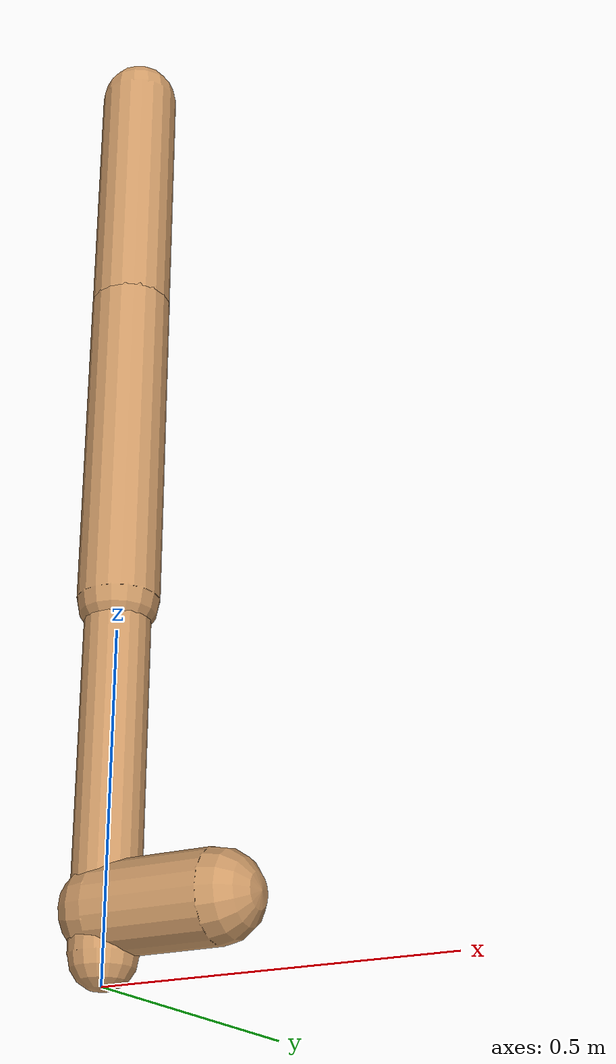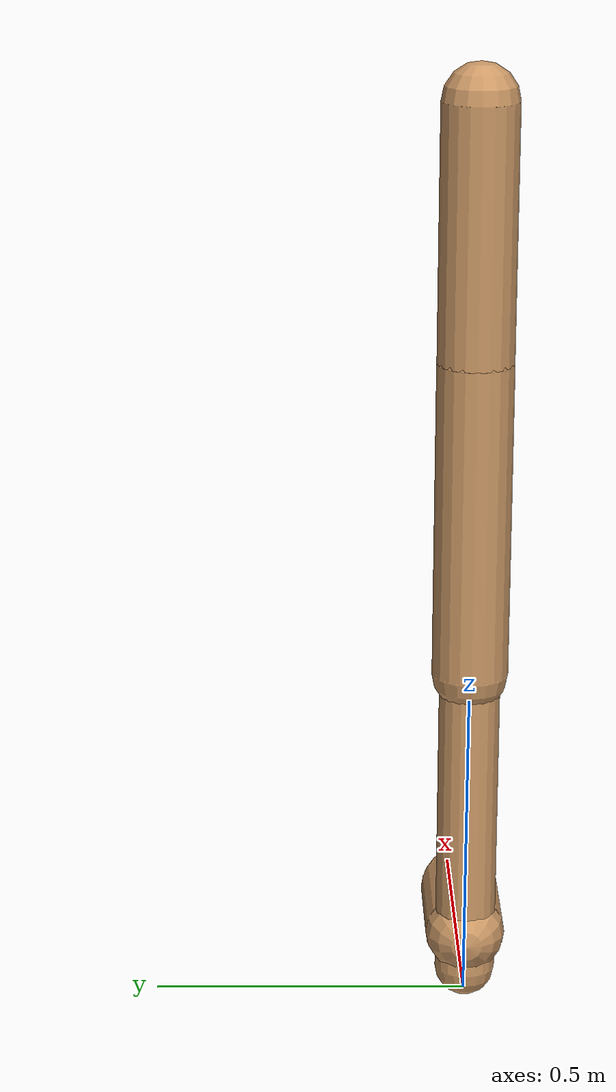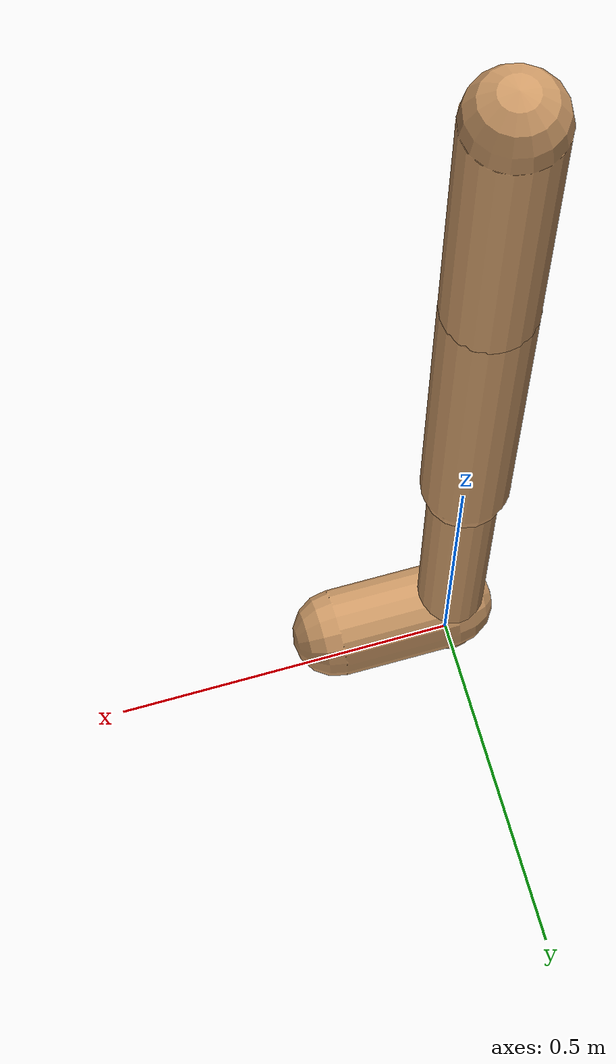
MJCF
<mujoco model="walker2d">
  <compiler angle="degree" coordinate="global" inertiafromgeom="true" />
  <default>
    <joint armature="0.01" damping=".1" limited="true" />
    <geom conaffinity="0" condim="3" contype="1" density="1000" friction="0.8 .1 .1" rgba="0.8 0.6 .4 1" />
  </default>
  <option integrator="RK4" timestep="0.002" />
  <worldbody>

    <body name="torso" pos="0 0 0.11298020529368936">
      <joint armature="0" axis="1 0 0" damping="0" limited="false" name="ignorex" pos="0 0 0" stiffness="0" type="slide" />
      <joint armature="0" axis="0 0 1" damping="0" limited="false" name="ignorez" pos="0 0 0" ref="1.25" stiffness="0" type="slide" />
      <joint armature="0" axis="0 1 0" damping="0" limited="false" name="ignorey" pos="0 0 0" stiffness="0" type="hinge" />
      <geom fromto="0 0 1.45 0 0 1.05" name="torso_geom" size="0.05977490343477221" type="capsule" />
      <body name="thigh">
        <joint axis="0 -1 0" name="thigh_joint" pos="0 0 1.05" range="-150 0" type="hinge" />
        <geom fromto="0.0 0.0 1.05 0.0 0.0 0.5464830606503577" name="thigh_geom" size="0.0600172645608261" type="capsule" />
        <body name="leg" pos="0.0 0.0 -0.0535169393496423">
          <joint axis="0 -1 0" name="leg_joint" pos="0 0 0.6" range="-150 0" type="hinge" />
          <geom fromto="0.0 0.0 0.6 0.0 0.0 0.040536734055952976" name="leg_geom" size="0.04801381164866088" type="capsule" />
          <body name="foot" pos="0.0 0.0 -0.05946326594404703">
            <joint axis="0 -1 0" name="foot_joint" pos="0 0 0.1" range="-45 45" type="hinge" />
            <geom fromto="0.0 0.0 0.1 0.17224643212128843 0.0 0.1" name="foot_geom" size="0.06369655269325102" type="capsule" />
          </body>
        </body>
      </body>

      <body name="thigh_left">
        <joint axis="0 -1 0" name="thigh_left_joint" pos="0 0 1.05" range="-150 0" type="hinge" />
        <geom fromto="0.0 0.0 1.05 0.0 0.0 0.5464830606503577" name="thigh_left_geom" rgba=".7 .3 .6 1" size="0.0600172645608261" type="capsule" />
        <body name="leg_left" pos="0.0 0.0 -0.0535169393496423">
          <joint axis="0 -1 0" name="leg_left_joint" pos="0 0 0.6" range="-150 0" type="hinge" />
          <geom fromto="0.0 0.0 0.6 0.0 0.0 0.040536734055952976" name="leg_left_geom" rgba=".7 .3 .6 1" size="0.04801381164866088" type="capsule" />
          <body name="foot_left" pos="0.0 0.0 -0.05946326594404703">
            <joint axis="0 -1 0" name="foot_left_joint" pos="0 0 0.1" range="-45 45" type="hinge" />
            <geom fromto="0.0 0.0 0.1 0.17224643212128843 0.0 0.1" name="foot_left_geom" rgba=".7 .3 .6 1" size="0.06369655269325102" type="capsule" />
          </body>
        </body>
      </body>
    </body>
  </worldbody>
  <actuator>

    <motor ctrllimited="true" ctrlrange="-1.0 1.0" gear="100" joint="thigh_joint" />
    <motor ctrllimited="true" ctrlrange="-1.0 1.0" gear="100" joint="leg_joint" />
    <motor ctrllimited="true" ctrlrange="-1.0 1.0" gear="100" joint="foot_joint" />
    <motor ctrllimited="true" ctrlrange="-1.0 1.0" gear="100" joint="thigh_left_joint" />
    <motor ctrllimited="true" ctrlrange="-1.0 1.0" gear="100" joint="leg_left_joint" />
    <motor ctrllimited="true" ctrlrange="-1.0 1.0" gear="100" joint="foot_left_joint" />

  </actuator>
</mujoco>
